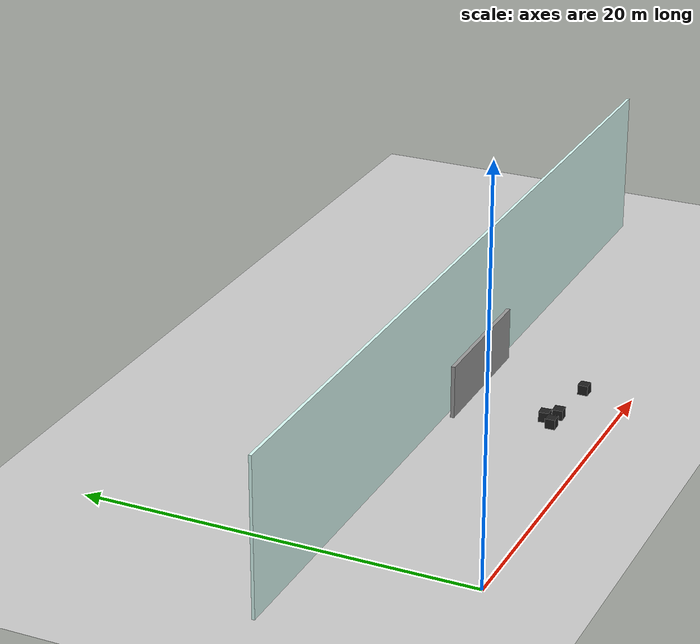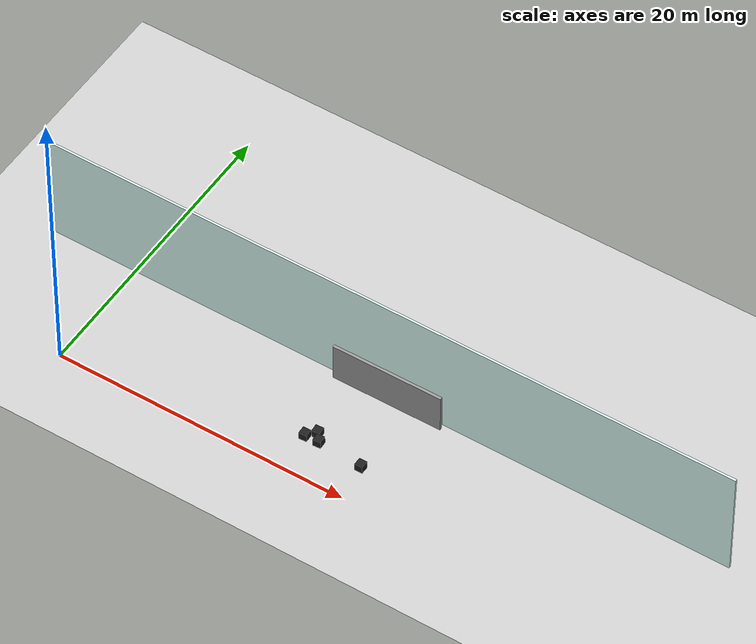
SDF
<sdf version="1.6">
 <world name="default">
  <model name="ground_plane">
   <static>1</static>
   <link name="link">
    <collision name="collision">
     <geometry><plane><normal>0 0 1</normal><size>100 100</size></plane></geometry>
     <surface>
      <contact><collide_bitmask>65535</collide_bitmask></contact>
      <friction><ode><mu>100</mu><mu2>50</mu2></ode></friction>
     </surface>
    </collision>
    <visual name="visual">
     <cast_shadows>0</cast_shadows>
     <geometry><plane><normal>0 0 1</normal><size>100 100</size></plane></geometry>
     <material>
      <script><uri>file://media/materials/scripts/gazebo.material</uri><name>Gazebo/Grey</name></script>
     </material>
    </visual>
   </link>
  </model>
  <model name="grey_wall">
   <static>1</static>
   <link name="link">
    <pose>0 0 1.4 0 -0 0</pose>
    <collision name="collision"><geometry><box><size>7.5 0.2 2.8</size></box></geometry></collision>
    <visual name="visual">
     <cast_shadows>0</cast_shadows>
     <geometry><box><size>7.5 0.2 2.8</size></box></geometry>
     <material>
      <script>
       <uri>model://grey_wall/materials/scripts</uri>
       <uri>model://grey_wall/materials/textures</uri>
       <name>vrc/grey_wall</name>
      </script>
     </material>
    </visual>
   </link>
   <pose>18.2315 7.51175 0 0 -0 0.005635</pose>
  </model>
  <model name="unit_box_0_clone_22_clone_4">
   <link name="link">
    <inertial>
     <mass>1</mass>
     <inertia>
      <ixx>0.166667</ixx>
      <ixy>0</ixy>
      <ixz>0</ixz>
      <iyy>0.166667</iyy>
      <iyz>0</iyz>
      <izz>0.166667</izz>
     </inertia>
    </inertial>
    <visual name="visual">
     <geometry><box><size>0.530101 0.530101 0.530101</size></box></geometry>
     <material>
      <script><name>Gazebo/FlatBlack</name><uri>file://media/materials/scripts/gazebo.material</uri></script>
      <shader type="pixel"><normal_map>__default__</normal_map></shader>
      <ambient>0.1 0.1 0.1 1</ambient>
      <diffuse>0.1 0.1 0.1 1</diffuse>
      <specular>0.01 0.01 0.01 1</specular>
      <emissive>0 0 0 1</emissive>
     </material>
    </visual>
    <collision name="collision">
     <geometry><box><size>0.530101 0.530101 0.530101</size></box></geometry>
     <surface>
      <friction>
       <ode><mu>1</mu><mu2>1</mu2><fdir1>0 0 0</fdir1><slip1>0</slip1><slip2>0</slip2></ode>
       <torsional>
        <coefficient>1</coefficient>
        <patch_radius>0</patch_radius>
        <surface_radius>0</surface_radius>
        <use_patch_radius>1</use_patch_radius>
        <ode><slip>0</slip></ode>
       </torsional>
      </friction>
      <bounce><restitution_coefficient>0</restitution_coefficient><threshold>1e+06</threshold></bounce>
      <contact>
       <collide_without_contact>0</collide_without_contact>
       <collide_without_contact_bitmask>1</collide_without_contact_bitmask>
       <collide_bitmask>1</collide_bitmask>
       <ode>
        <soft_cfm>0</soft_cfm>
        <soft_erp>0.2</soft_erp>
        <kp>1e+13</kp>
        <kd>1</kd>
        <max_vel>0.01</max_vel>
        <min_depth>0</min_depth>
       </ode>
       <bullet>
        <split_impulse>1</split_impulse>
        <split_impulse_penetration_threshold>-0.01</split_impulse_penetration_threshold>
        <soft_cfm>0</soft_cfm>
        <soft_erp>0.2</soft_erp>
        <kp>1e+13</kp>
        <kd>1</kd>
       </bullet>
      </contact>
     </surface>
    </collision>
   </link>
   <static>0</static>
   <pose>19.699 2.43698 0.31411 2e-06 -8e-06 -0.010485</pose>
  </model>
  <model name="unit_box_0_clone_22_clone_15_clone">
   <link name="link">
    <inertial>
     <mass>1</mass>
     <inertia>
      <ixx>0.166667</ixx>
      <ixy>0</ixy>
      <ixz>0</ixz>
      <iyy>0.166667</iyy>
      <iyz>0</iyz>
      <izz>0.166667</izz>
     </inertia>
    </inertial>
    <visual name="visual">
     <geometry><box><size>0.530101 0.530101 0.530101</size></box></geometry>
     <material>
      <script><name>Gazebo/FlatBlack</name><uri>file://media/materials/scripts/gazebo.material</uri></script>
      <shader type="pixel"><normal_map>__default__</normal_map></shader>
      <ambient>0.1 0.1 0.1 1</ambient>
      <diffuse>0.1 0.1 0.1 1</diffuse>
      <specular>0.01 0.01 0.01 1</specular>
      <emissive>0 0 0 1</emissive>
     </material>
    </visual>
    <collision name="collision">
     <geometry><box><size>0.530101 0.530101 0.530101</size></box></geometry>
     <surface>
      <friction>
       <ode><mu>1</mu><mu2>1</mu2><fdir1>0 0 0</fdir1><slip1>0</slip1><slip2>0</slip2></ode>
       <torsional>
        <coefficient>1</coefficient>
        <patch_radius>0</patch_radius>
        <surface_radius>0</surface_radius>
        <use_patch_radius>1</use_patch_radius>
        <ode><slip>0</slip></ode>
       </torsional>
      </friction>
      <bounce><restitution_coefficient>0</restitution_coefficient><threshold>1e+06</threshold></bounce>
      <contact>
       <collide_without_contact>0</collide_without_contact>
       <collide_without_contact_bitmask>1</collide_without_contact_bitmask>
       <collide_bitmask>1</collide_bitmask>
       <ode>
        <soft_cfm>0</soft_cfm>
        <soft_erp>0.2</soft_erp>
        <kp>1e+13</kp>
        <kd>1</kd>
        <max_vel>0.01</max_vel>
        <min_depth>0</min_depth>
       </ode>
       <bullet>
        <split_impulse>1</split_impulse>
        <split_impulse_penetration_threshold>-0.01</split_impulse_penetration_threshold>
        <soft_cfm>0</soft_cfm>
        <soft_erp>0.2</soft_erp>
        <kp>1e+13</kp>
        <kd>1</kd>
       </bullet>
      </contact>
     </surface>
    </collision>
   </link>
   <static>0</static>
   <pose>16.6126 2.65833 0.310618 -0.001158 -0.020052 0.060121</pose>
  </model>
  <model name="unit_box_0_clone_22_clone_15_clone_0">
   <link name="link">
    <inertial>
     <mass>1</mass>
     <inertia>
      <ixx>0.166667</ixx>
      <ixy>0</ixy>
      <ixz>0</ixz>
      <iyy>0.166667</iyy>
      <iyz>0</iyz>
      <izz>0.166667</izz>
     </inertia>
    </inertial>
    <visual name="visual">
     <geometry><box><size>0.530101 0.530101 0.530101</size></box></geometry>
     <material>
      <script><name>Gazebo/FlatBlack</name><uri>file://media/materials/scripts/gazebo.material</uri></script>
      <shader type="pixel"><normal_map>__default__</normal_map></shader>
      <ambient>0.1 0.1 0.1 1</ambient>
      <diffuse>0.1 0.1 0.1 1</diffuse>
      <specular>0.01 0.01 0.01 1</specular>
      <emissive>0 0 0 1</emissive>
     </material>
    </visual>
    <collision name="collision">
     <geometry><box><size>0.530101 0.530101 0.530101</size></box></geometry>
     <surface>
      <friction>
       <ode><mu>1</mu><mu2>1</mu2><fdir1>0 0 0</fdir1><slip1>0</slip1><slip2>0</slip2></ode>
       <torsional>
        <coefficient>1</coefficient>
        <patch_radius>0</patch_radius>
        <surface_radius>0</surface_radius>
        <use_patch_radius>1</use_patch_radius>
        <ode><slip>0</slip></ode>
       </torsional>
      </friction>
      <bounce><restitution_coefficient>0</restitution_coefficient><threshold>1e+06</threshold></bounce>
      <contact>
       <collide_without_contact>0</collide_without_contact>
       <collide_without_contact_bitmask>1</collide_without_contact_bitmask>
       <collide_bitmask>1</collide_bitmask>
       <ode>
        <soft_cfm>0</soft_cfm>
        <soft_erp>0.2</soft_erp>
        <kp>1e+13</kp>
        <kd>1</kd>
        <max_vel>0.01</max_vel>
        <min_depth>0</min_depth>
       </ode>
       <bullet>
        <split_impulse>1</split_impulse>
        <split_impulse_penetration_threshold>-0.01</split_impulse_penetration_threshold>
        <soft_cfm>0</soft_cfm>
        <soft_erp>0.2</soft_erp>
        <kp>1e+13</kp>
        <kd>1</kd>
       </bullet>
      </contact>
     </surface>
    </collision>
   </link>
   <static>0</static>
   <pose>16.1648 3.22166 0.26505 0 -0 0.066212</pose>
  </model>
  <model name="unit_box_0_clone_22_clone_15_clone_1">
   <link name="link">
    <inertial>
     <mass>1</mass>
     <inertia>
      <ixx>0.166667</ixx>
      <ixy>0</ixy>
      <ixz>0</ixz>
      <iyy>0.166667</iyy>
      <iyz>0</iyz>
      <izz>0.166667</izz>
     </inertia>
    </inertial>
    <visual name="visual">
     <geometry><box><size>0.530101 0.530101 0.530101</size></box></geometry>
     <material>
      <script><name>Gazebo/FlatBlack</name><uri>file://media/materials/scripts/gazebo.material</uri></script>
      <shader type="pixel"><normal_map>__default__</normal_map></shader>
      <ambient>0.1 0.1 0.1 1</ambient>
      <diffuse>0.1 0.1 0.1 1</diffuse>
      <specular>0.01 0.01 0.01 1</specular>
      <emissive>0 0 0 1</emissive>
     </material>
    </visual>
    <collision name="collision">
     <geometry><box><size>0.530101 0.530101 0.530101</size></box></geometry>
     <surface>
      <friction>
       <ode><mu>1</mu><mu2>1</mu2><fdir1>0 0 0</fdir1><slip1>0</slip1><slip2>0</slip2></ode>
       <torsional>
        <coefficient>1</coefficient>
        <patch_radius>0</patch_radius>
        <surface_radius>0</surface_radius>
        <use_patch_radius>1</use_patch_radius>
        <ode><slip>0</slip></ode>
       </torsional>
      </friction>
      <bounce><restitution_coefficient>0</restitution_coefficient><threshold>1e+06</threshold></bounce>
      <contact>
       <collide_without_contact>0</collide_without_contact>
       <collide_without_contact_bitmask>1</collide_without_contact_bitmask>
       <collide_bitmask>1</collide_bitmask>
       <ode>
        <soft_cfm>0</soft_cfm>
        <soft_erp>0.2</soft_erp>
        <kp>1e+13</kp>
        <kd>1</kd>
        <max_vel>0.01</max_vel>
        <min_depth>0</min_depth>
       </ode>
       <bullet>
        <split_impulse>1</split_impulse>
        <split_impulse_penetration_threshold>-0.01</split_impulse_penetration_threshold>
        <soft_cfm>0</soft_cfm>
        <soft_erp>0.2</soft_erp>
        <kp>1e+13</kp>
        <kd>1</kd>
       </bullet>
      </contact>
     </surface>
    </collision>
   </link>
   <static>0</static>
   <pose>15.6259 2.67518 0.26505 0 -0 0.031191</pose>
  </model>
  <model name="world_frame">
   <link name="Wall_212">
    <pose>0.020361 5.425 -0.100255 0 -0 3.14159</pose>
    <visual name="Wall_212_Visual">
     <pose>0 0 4 0 -0 0</pose>
     <geometry><box><size>47.75 0.15 8</size></box></geometry>
     <material>
      <script><uri>file://media/materials/scripts/gazebo.material</uri><name>Gazebo/Grey</name></script>
      <ambient>0.866667 1 0.972549 1</ambient>
      <shader type="pixel"/>
      <diffuse>0.7 0.7 0.7 1</diffuse>
      <specular>0.01 0.01 0.01 1</specular>
      <emissive>0 0 0 1</emissive>
     </material>
     <meta><layer>0</layer></meta>
    </visual>
    <collision name="Wall_212_Collision">
     <pose>0 0 4 0 -0 0</pose>
     <geometry><box><size>47.75 0.15 8</size></box></geometry>
     <surface>
      <friction>
       <ode><mu>1</mu><mu2>1</mu2><fdir1>0 0 0</fdir1><slip1>0</slip1><slip2>0</slip2></ode>
       <torsional>
        <coefficient>1</coefficient>
        <patch_radius>0</patch_radius>
        <surface_radius>0</surface_radius>
        <use_patch_radius>1</use_patch_radius>
        <ode><slip>0</slip></ode>
       </torsional>
      </friction>
      <bounce><restitution_coefficient>0</restitution_coefficient><threshold>1e+06</threshold></bounce>
      <contact>
       <collide_without_contact>0</collide_without_contact>
       <collide_without_contact_bitmask>1</collide_without_contact_bitmask>
       <collide_bitmask>1</collide_bitmask>
       <ode>
        <soft_cfm>0</soft_cfm>
        <soft_erp>0.2</soft_erp>
        <kp>1e+13</kp>
        <kd>1</kd>
        <max_vel>0.01</max_vel>
        <min_depth>0</min_depth>
       </ode>
       <bullet>
        <split_impulse>1</split_impulse>
        <split_impulse_penetration_threshold>-0.01</split_impulse_penetration_threshold>
        <soft_cfm>0</soft_cfm>
        <soft_erp>0.2</soft_erp>
        <kp>1e+13</kp>
        <kd>1</kd>
       </bullet>
      </contact>
     </surface>
    </collision>
   </link>
   <static>1</static>
   <pose>17.5761 2.5415 0 0 -0 0</pose>
  </model>
 </world>
</sdf>
